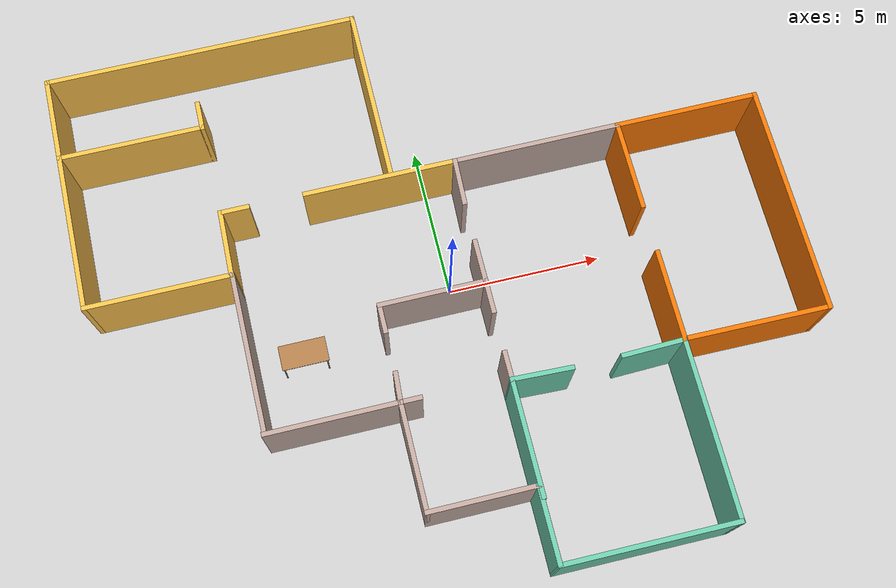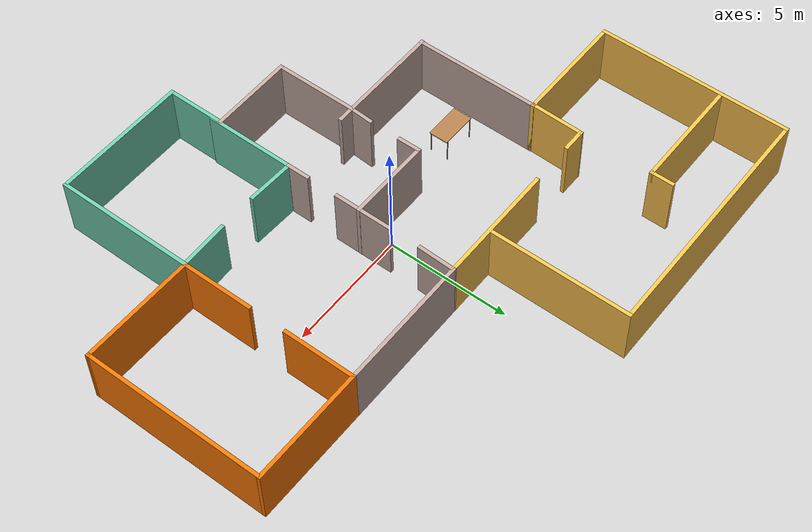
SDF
<sdf version="1.7">
 <world name="default">
  <model name="ground_plane">
   <static>1</static>
   <link name="link">
    <collision name="collision">
     <geometry><plane><normal>0 0 1</normal><size>100 100</size></plane></geometry>
     <surface>
      <contact><collide_bitmask>65535</collide_bitmask></contact>
      <friction><ode><mu>100</mu><mu2>50</mu2></ode></friction>
     </surface>
    </collision>
    <visual name="visual">
     <cast_shadows>0</cast_shadows>
     <geometry><plane><normal>0 0 1</normal><size>100 100</size></plane></geometry>
     <material>
      <script><uri>file://media/materials/scripts/gazebo.material</uri><name>Gazebo/Grey</name></script>
     </material>
    </visual>
   </link>
  </model>
  <model name="MyHome">
   <pose>-0.14512 -0.1471 0 0 -0 0</pose>
   <link name="Wall_0">
    <collision name="Wall_0_Collision">
     <geometry><box><size>5.5 0.15 2.5</size></box></geometry>
     <pose>0 0 1.25 0 -0 0</pose>
    </collision>
    <visual name="Wall_0_Visual">
     <pose>0 0 1.25 0 -0 0</pose>
     <geometry><box><size>5.5 0.15 2.5</size></box></geometry>
     <material>
      <script><uri>file://media/materials/scripts/gazebo.material</uri><name>Gazebo/Grey</name></script>
      <ambient>0.760784 0.662745 0.627451 1</ambient>
     </material>
     <meta><layer>0</layer></meta>
    </visual>
    <pose>3.78803 3.5852 0 0 -0 3.14159</pose>
   </link>
   <link name="Wall_1">
    <collision name="Wall_1_Collision">
     <geometry><box><size>5 0.15 2.5</size></box></geometry>
     <pose>0 0 1.25 0 -0 0</pose>
    </collision>
    <visual name="Wall_1_Visual">
     <pose>0 0 1.25 0 -0 0</pose>
     <geometry><box><size>5 0.15 2.5</size></box></geometry>
     <material>
      <script><uri>file://media/materials/scripts/gazebo.material</uri><name>Gazebo/Grey</name></script>
      <ambient>1 0.764706 0.305882 1</ambient>
     </material>
     <meta><layer>0</layer></meta>
    </visual>
    <pose>-1.31197 3.5852 0 0 -0 3.14159</pose>
   </link>
   <link name="Wall_10">
    <collision name="Wall_10_Collision">
     <geometry><box><size>3.5 0.15 2.5</size></box></geometry>
     <pose>0 0 1.25 0 -0 0</pose>
    </collision>
    <visual name="Wall_10_Visual">
     <pose>0 0 1.25 0 -0 0</pose>
     <geometry><box><size>3.5 0.15 2.5</size></box></geometry>
     <material>
      <script><uri>file://media/materials/scripts/gazebo.material</uri><name>Gazebo/Grey</name></script>
      <ambient>0.760784 0.662745 0.627451 1</ambient>
     </material>
     <meta><layer>0</layer></meta>
    </visual>
    <pose>-0.661974 -6.96481 0 0 -0 0</pose>
   </link>
   <link name="Wall_11">
    <collision name="Wall_11_Collision">
     <geometry><box><size>2.5 0.15 2.5</size></box></geometry>
     <pose>0 0 1.25 0 -0 0</pose>
    </collision>
    <visual name="Wall_11_Visual">
     <pose>0 0 1.25 0 -0 0</pose>
     <geometry><box><size>2.5 0.15 2.5</size></box></geometry>
     <material>
      <script><uri>file://media/materials/scripts/gazebo.material</uri><name>Gazebo/Grey</name></script>
      <ambient>0.435294 0.796078 0.67451 1</ambient>
     </material>
     <meta><layer>0</layer></meta>
    </visual>
    <pose>1.01303 -8.13981 0 0 -0 -1.5708</pose>
   </link>
   <link name="Wall_12">
    <collision name="Wall_12_Collision">
     <geometry><box><size>5.56902 0.15 2.5</size></box></geometry>
     <pose>0 0 1.25 0 -0 0</pose>
    </collision>
    <visual name="Wall_12_Visual">
     <pose>0 0 1.25 0 -0 0</pose>
     <geometry><box><size>5.56902 0.15 2.5</size></box></geometry>
     <material>
      <script><uri>file://media/materials/scripts/gazebo.material</uri><name>Gazebo/Grey</name></script>
      <ambient>0.435294 0.796078 0.67451 1</ambient>
     </material>
     <meta><layer>0</layer></meta>
    </visual>
    <pose>3.72251 -9.32486 0 0 -0 -0.003712</pose>
   </link>
   <link name="Wall_13">
    <collision name="Wall_13_Collision">
     <geometry><box><size>5.75 0.15 2.5</size></box></geometry>
     <pose>0 0 1.25 0 -0 0</pose>
    </collision>
    <visual name="Wall_13_Visual">
     <pose>0 0 1.25 0 -0 0</pose>
     <geometry><box><size>5.75 0.15 2.5</size></box></geometry>
     <material>
      <script><uri>file://media/materials/scripts/gazebo.material</uri><name>Gazebo/Grey</name></script>
      <ambient>0.435294 0.796078 0.67451 1</ambient>
     </material>
     <meta><layer>0</layer></meta>
    </visual>
    <pose>6.45212 -6.53492 0 0 -0 1.5708</pose>
   </link>
   <link name="Wall_14">
    <collision name="Wall_14_Collision">
     <geometry><box><size>2.06964 0.15 2.5</size></box></geometry>
     <pose>0 0 1.25 0 -0 0</pose>
    </collision>
    <visual name="Wall_14_Visual">
     <pose>0 0 1.25 0 -0 0</pose>
     <geometry><box><size>2.06964 0.15 2.5</size></box></geometry>
     <material>
      <script><uri>file://media/materials/scripts/gazebo.material</uri><name>Gazebo/Grey</name></script>
      <ambient>0.435294 0.796078 0.67451 1</ambient>
     </material>
     <meta><layer>0</layer></meta>
    </visual>
    <pose>5.47251 -3.76004 0 0 -0 -3.11542</pose>
   </link>
   <link name="Wall_16">
    <collision name="Wall_16_Collision">
     <geometry><box><size>2.00134 0.15 2.5</size></box></geometry>
     <pose>0 0 1.25 0 -0 0</pose>
    </collision>
    <visual name="Wall_16_Visual">
     <pose>0 0 1.25 0 -0 0</pose>
     <geometry><box><size>2.00134 0.15 2.5</size></box></geometry>
     <material>
      <script><uri>file://media/materials/scripts/gazebo.material</uri><name>Gazebo/Grey</name></script>
      <ambient>0.435294 0.796078 0.67451 1</ambient>
     </material>
     <meta><layer>0</layer></meta>
    </visual>
    <pose>1.98803 -3.74998 0 0 -0 3.10358</pose>
   </link>
   <link name="Wall_17">
    <collision name="Wall_17_Collision">
     <geometry><box><size>3.75 0.15 2.5</size></box></geometry>
     <pose>0 0 1.25 0 -0 0</pose>
    </collision>
    <visual name="Wall_17_Visual">
     <pose>0 0 1.25 0 -0 0</pose>
     <geometry><box><size>3.75 0.15 2.5</size></box></geometry>
     <material>
      <script><uri>file://media/materials/scripts/gazebo.material</uri><name>Gazebo/Grey</name></script>
      <ambient>0.435294 0.796078 0.67451 1</ambient>
     </material>
     <meta><layer>0</layer></meta>
    </visual>
    <pose>1.06303 -5.5148 0 0 -0 -1.5708</pose>
   </link>
   <link name="Wall_19">
    <collision name="Wall_19_Collision">
     <geometry><box><size>0.75 0.15 2.5</size></box></geometry>
     <pose>0 0 1.25 0 -0 0</pose>
    </collision>
    <visual name="Wall_19_Visual">
     <pose>0 0 1.25 0 -0 0</pose>
     <geometry><box><size>0.75 0.15 2.5</size></box></geometry>
     <material>
      <script><uri>file://media/materials/scripts/gazebo.material</uri><name>Gazebo/Grey</name></script>
      <ambient>0.760784 0.662745 0.627451 1</ambient>
     </material>
     <meta><layer>0</layer></meta>
    </visual>
    <pose>-2.03697 -3.61481 0 0 -0 0</pose>
   </link>
   <link name="Wall_23">
    <collision name="Wall_23_Collision">
     <geometry><box><size>1 0.15 2.5</size></box></geometry>
     <pose>0 0 1.25 0 -0 0</pose>
    </collision>
    <visual name="Wall_23_Visual">
     <pose>0 0 1.25 0 -0 0</pose>
     <geometry><box><size>1 0.15 2.5</size></box></geometry>
     <material>
      <script><uri>file://media/materials/scripts/gazebo.material</uri><name>Gazebo/Grey</name></script>
      <ambient>0.760784 0.662745 0.627451 1</ambient>
     </material>
     <meta><layer>0</layer></meta>
    </visual>
    <pose>1.06303 -3.2898 0 0 -0 1.5708</pose>
   </link>
   <link name="Wall_25">
    <collision name="Wall_25_Collision">
     <geometry><box><size>2.45977 0.15 2.5</size></box></geometry>
     <pose>0 0 1.25 0 -0 0</pose>
    </collision>
    <visual name="Wall_25_Visual">
     <pose>0 0 1.25 0 -0 0</pose>
     <geometry><box><size>2.45977 0.15 2.5</size></box></geometry>
     <material>
      <script><uri>file://media/materials/scripts/gazebo.material</uri><name>Gazebo/Grey</name></script>
      <ambient>0.760784 0.662745 0.627451 1</ambient>
     </material>
     <meta><layer>0</layer></meta>
    </visual>
    <pose>1.06303 -0.359918 0 0 -0 1.5708</pose>
   </link>
   <link name="Wall_27">
    <collision name="Wall_27_Collision">
     <geometry><box><size>1.59109 0.15 2.5</size></box></geometry>
     <pose>0 0 1.25 0 -0 0</pose>
    </collision>
    <visual name="Wall_27_Visual">
     <pose>0 0 1.25 0 -0 0</pose>
     <geometry><box><size>1.59109 0.15 2.5</size></box></geometry>
     <material>
      <script><uri>file://media/materials/scripts/gazebo.material</uri><name>Gazebo/Grey</name></script>
      <ambient>0.760784 0.662745 0.627451 1</ambient>
     </material>
     <meta><layer>0</layer></meta>
    </visual>
    <pose>1.08803 2.86508 0 0 -0 1.53609</pose>
   </link>
   <link name="Wall_29">
    <collision name="Wall_29_Collision">
     <geometry><box><size>3.5 0.15 2.5</size></box></geometry>
     <pose>0 0 1.25 0 -0 0</pose>
    </collision>
    <visual name="Wall_29_Visual">
     <pose>0 0 1.25 0 -0 0</pose>
     <geometry><box><size>3.5 0.15 2.5</size></box></geometry>
     <material>
      <script><uri>file://media/materials/scripts/gazebo.material</uri><name>Gazebo/Grey</name></script>
      <ambient>0.760784 0.662745 0.627451 1</ambient>
     </material>
     <meta><layer>0</layer></meta>
    </visual>
    <pose>-0.606876 -0.519992 0 0 -0 3.14159</pose>
   </link>
   <link name="Wall_30">
    <collision name="Wall_30_Collision">
     <geometry><box><size>1 0.15 2.5</size></box></geometry>
     <pose>0 0 1.25 0 -0 0</pose>
    </collision>
    <visual name="Wall_30_Visual">
     <pose>0 0 1.25 0 -0 0</pose>
     <geometry><box><size>1 0.15 2.5</size></box></geometry>
     <material>
      <script><uri>file://media/materials/scripts/gazebo.material</uri><name>Gazebo/Grey</name></script>
      <ambient>0.760784 0.662745 0.627451 1</ambient>
     </material>
     <meta><layer>0</layer></meta>
    </visual>
    <pose>-2.28188 -0.944992 0 0 -0 -1.5708</pose>
   </link>
   <link name="Wall_32">
    <collision name="Wall_32_Collision">
     <geometry><box><size>1.04651 0.15 2.5</size></box></geometry>
     <pose>0 0 1.25 0 -0 0</pose>
    </collision>
    <visual name="Wall_32_Visual">
     <pose>0 0 1.25 0 -0 0</pose>
     <geometry><box><size>1.04651 0.15 2.5</size></box></geometry>
     <material>
      <script><uri>file://media/materials/scripts/gazebo.material</uri><name>Gazebo/Grey</name></script>
      <ambient>0.760784 0.662745 0.627451 1</ambient>
     </material>
     <meta><layer>0</layer></meta>
    </visual>
    <pose>-2.30943 -3.1674 0 0 -0 -1.63229</pose>
   </link>
   <link name="Wall_34">
    <collision name="Wall_34_Collision">
     <geometry><box><size>3 0.15 2.5</size></box></geometry>
     <pose>0 0 1.25 0 -0 0</pose>
    </collision>
    <visual name="Wall_34_Visual">
     <pose>0 0 1.25 0 -0 0</pose>
     <geometry><box><size>3 0.15 2.5</size></box></geometry>
     <material>
      <script><uri>file://media/materials/scripts/gazebo.material</uri><name>Gazebo/Grey</name></script>
      <ambient>0.996078 0.47451 0.0196078 1</ambient>
     </material>
     <meta><layer>0</layer></meta>
    </visual>
    <pose>6.46303 2.16019 0 0 -0 -1.5708</pose>
   </link>
   <link name="Wall_36">
    <collision name="Wall_36_Collision">
     <geometry><box><size>3 0.15 2.5</size></box></geometry>
     <pose>0 0 1.25 0 -0 0</pose>
    </collision>
    <visual name="Wall_36_Visual">
     <pose>0 0 1.25 0 -0 0</pose>
     <geometry><box><size>3 0.15 2.5</size></box></geometry>
     <material>
      <script><uri>file://media/materials/scripts/gazebo.material</uri><name>Gazebo/Grey</name></script>
      <ambient>0.996078 0.47451 0.0196078 1</ambient>
     </material>
     <meta><layer>0</layer></meta>
    </visual>
    <pose>6.46303 -2.2898 0 0 -0 -1.5708</pose>
   </link>
   <link name="Wall_38">
    <collision name="Wall_38_Collision">
     <geometry><box><size>4.75 0.15 2.5</size></box></geometry>
     <pose>0 0 1.25 0 -0 0</pose>
    </collision>
    <visual name="Wall_38_Visual">
     <pose>0 0 1.25 0 -0 0</pose>
     <geometry><box><size>4.75 0.15 2.5</size></box></geometry>
     <material>
      <script><uri>file://media/materials/scripts/gazebo.material</uri><name>Gazebo/Grey</name></script>
      <ambient>0.996078 0.47451 0.0196078 1</ambient>
     </material>
     <meta><layer>0</layer></meta>
    </visual>
    <pose>8.76303 3.5852 0 0 -0 0</pose>
   </link>
   <link name="Wall_39">
    <collision name="Wall_39_Collision">
     <geometry><box><size>7.5 0.15 2.5</size></box></geometry>
     <pose>0 0 1.25 0 -0 0</pose>
    </collision>
    <visual name="Wall_39_Visual">
     <pose>0 0 1.25 0 -0 0</pose>
     <geometry><box><size>7.5 0.15 2.5</size></box></geometry>
     <material>
      <script><uri>file://media/materials/scripts/gazebo.material</uri><name>Gazebo/Grey</name></script>
      <ambient>0.996078 0.47451 0.0196078 1</ambient>
     </material>
     <meta><layer>0</layer></meta>
    </visual>
    <pose>11.063 -0.089805 0 0 -0 -1.5708</pose>
   </link>
   <link name="Wall_4">
    <collision name="Wall_4_Collision">
     <geometry><box><size>2.25 0.15 2.5</size></box></geometry>
     <pose>0 0 1.25 0 -0 0</pose>
    </collision>
    <visual name="Wall_4_Visual">
     <pose>0 0 1.25 0 -0 0</pose>
     <geometry><box><size>2.25 0.15 2.5</size></box></geometry>
     <material>
      <script><uri>file://media/materials/scripts/gazebo.material</uri><name>Gazebo/Grey</name></script>
      <ambient>1 0.764706 0.305882 1</ambient>
     </material>
     <meta><layer>0</layer></meta>
    </visual>
    <pose>-6.46011 2.53519 0 0 -0 -1.59282</pose>
   </link>
   <link name="Wall_40">
    <collision name="Wall_40_Collision">
     <geometry><box><size>4.75027 0.15 2.5</size></box></geometry>
     <pose>0 0 1.25 0 -0 0</pose>
    </collision>
    <visual name="Wall_40_Visual">
     <pose>0 0 1.25 0 -0 0</pose>
     <geometry><box><size>4.75027 0.15 2.5</size></box></geometry>
     <material>
      <script><uri>file://media/materials/scripts/gazebo.material</uri><name>Gazebo/Grey</name></script>
      <ambient>0.996078 0.47451 0.0196078 1</ambient>
     </material>
     <meta><layer>0</layer></meta>
    </visual>
    <pose>8.76303 -3.73981 0 0 -0 3.13072</pose>
   </link>
   <link name="Wall_42">
    <collision name="Wall_42_Collision">
     <geometry><box><size>1 0.15 2.5</size></box></geometry>
     <pose>0 0 1.25 0 -0 0</pose>
    </collision>
    <visual name="Wall_42_Visual">
     <pose>0 0 1.25 0 -0 0</pose>
     <geometry><box><size>1 0.15 2.5</size></box></geometry>
     <material>
      <script><uri>file://media/materials/scripts/gazebo.material</uri><name>Gazebo/Grey</name></script>
      <ambient>1 0.764706 0.305882 1</ambient>
     </material>
     <meta><layer>0</layer></meta>
    </visual>
    <pose>-6.01197 3.5852 0 0 -0 0</pose>
   </link>
   <link name="Wall_44">
    <collision name="Wall_44_Collision">
     <geometry><box><size>4.75 0.15 2.5</size></box></geometry>
     <pose>0 0 1.25 0 -0 0</pose>
    </collision>
    <visual name="Wall_44_Visual">
     <pose>0 0 1.25 0 -0 0</pose>
     <geometry><box><size>4.75 0.15 2.5</size></box></geometry>
     <material>
      <script><uri>file://media/materials/scripts/gazebo.material</uri><name>Gazebo/Grey</name></script>
      <ambient>1 0.764706 0.305882 1</ambient>
     </material>
     <meta><layer>0</layer></meta>
    </visual>
    <pose>-8.7601 1.4852 0 0 -0 3.14159</pose>
   </link>
   <link name="Wall_45">
    <collision name="Wall_45_Collision">
     <geometry><box><size>8 0.15 2.5</size></box></geometry>
     <pose>0 0 1.25 0 -0 0</pose>
    </collision>
    <visual name="Wall_45_Visual">
     <pose>0 0 1.25 0 -0 0</pose>
     <geometry><box><size>8 0.15 2.5</size></box></geometry>
     <material>
      <script><uri>file://media/materials/scripts/gazebo.material</uri><name>Gazebo/Grey</name></script>
      <ambient>1 0.764706 0.305882 1</ambient>
     </material>
     <meta><layer>0</layer></meta>
    </visual>
    <pose>-11.0601 5.41019 0 0 -0 1.5708</pose>
   </link>
   <link name="Wall_46">
    <collision name="Wall_46_Collision">
     <geometry><box><size>10.25 0.15 2.5</size></box></geometry>
     <pose>0 0 1.25 0 -0 0</pose>
    </collision>
    <visual name="Wall_46_Visual">
     <pose>0 0 1.25 0 -0 0</pose>
     <geometry><box><size>10.25 0.15 2.5</size></box></geometry>
     <material>
      <script><uri>file://media/materials/scripts/gazebo.material</uri><name>Gazebo/Grey</name></script>
      <ambient>1 0.764706 0.305882 1</ambient>
     </material>
     <meta><layer>0</layer></meta>
    </visual>
    <pose>-6.01011 9.3352 0 0 -0 0</pose>
   </link>
   <link name="Wall_47">
    <collision name="Wall_47_Collision">
     <geometry><box><size>5.75 0.15 2.5</size></box></geometry>
     <pose>0 0 1.25 0 -0 0</pose>
    </collision>
    <visual name="Wall_47_Visual">
     <pose>0 0 1.25 0 -0 0</pose>
     <geometry><box><size>5.75 0.15 2.5</size></box></geometry>
     <material>
      <script><uri>file://media/materials/scripts/gazebo.material</uri><name>Gazebo/Grey</name></script>
      <ambient>1 0.764706 0.305882 1</ambient>
     </material>
     <meta><layer>0</layer></meta>
    </visual>
    <pose>-0.960105 6.53519 0 0 -0 -1.5708</pose>
   </link>
   <link name="Wall_5">
    <collision name="Wall_5_Collision">
     <geometry><box><size>5.25 0.15 2.5</size></box></geometry>
     <pose>0 0 1.25 0 -0 0</pose>
    </collision>
    <visual name="Wall_5_Visual">
     <pose>0 0 1.25 0 -0 0</pose>
     <geometry><box><size>5.25 0.15 2.5</size></box></geometry>
     <material>
      <script><uri>file://media/materials/scripts/gazebo.material</uri><name>Gazebo/Grey</name></script>
      <ambient>0.760784 0.662745 0.627451 1</ambient>
     </material>
     <meta><layer>0</layer></meta>
    </visual>
    <pose>-6.46011 -1.06481 0 0 -0 -1.5708</pose>
   </link>
   <link name="Wall_50">
    <collision name="Wall_50_Collision">
     <geometry><box><size>4.75 0.15 2.5</size></box></geometry>
     <pose>0 0 1.25 0 -0 0</pose>
    </collision>
    <visual name="Wall_50_Visual">
     <pose>0 0 1.25 0 -0 0</pose>
     <geometry><box><size>4.75 0.15 2.5</size></box></geometry>
     <material>
      <script><uri>file://media/materials/scripts/gazebo.material</uri><name>Gazebo/Grey</name></script>
      <ambient>1 0.764706 0.305882 1</ambient>
     </material>
     <meta><layer>0</layer></meta>
    </visual>
    <pose>-8.76384 6.60144 0 0 -0 0</pose>
   </link>
   <link name="Wall_51">
    <collision name="Wall_51_Collision">
     <geometry><box><size>1 0.15 2.5</size></box></geometry>
     <pose>0 0 1.25 0 -0 0</pose>
    </collision>
    <visual name="Wall_51_Visual">
     <pose>0 0 1.25 0 -0 0</pose>
     <geometry><box><size>1 0.15 2.5</size></box></geometry>
     <material>
      <script><uri>file://media/materials/scripts/gazebo.material</uri><name>Gazebo/Grey</name></script>
      <ambient>1 0.764706 0.305882 1</ambient>
     </material>
     <meta><layer>0</layer></meta>
    </visual>
    <pose>-6.46384 7.02644 0 0 -0 1.5708</pose>
   </link>
   <link name="Wall_8">
    <collision name="Wall_8_Collision">
     <geometry><box><size>4.29626 0.15 2.5</size></box></geometry>
     <pose>0 0 1.25 0 -0 0</pose>
    </collision>
    <visual name="Wall_8_Visual">
     <pose>0 0 1.25 0 -0 0</pose>
     <geometry><box><size>4.29626 0.15 2.5</size></box></geometry>
     <material>
      <script><uri>file://media/materials/scripts/gazebo.material</uri><name>Gazebo/Grey</name></script>
      <ambient>0.760784 0.662745 0.627451 1</ambient>
     </material>
     <meta><layer>0</layer></meta>
    </visual>
    <pose>-4.4101 -3.61481 0 0 -0 0</pose>
   </link>
   <link name="Wall_9">
    <collision name="Wall_9_Collision">
     <geometry><box><size>3.5 0.15 2.5</size></box></geometry>
     <pose>0 0 1.25 0 -0 0</pose>
    </collision>
    <visual name="Wall_9_Visual">
     <pose>0 0 1.25 0 -0 0</pose>
     <geometry><box><size>3.5 0.15 2.5</size></box></geometry>
     <material>
      <script><uri>file://media/materials/scripts/gazebo.material</uri><name>Gazebo/Grey</name></script>
      <ambient>0.760784 0.662745 0.627451 1</ambient>
     </material>
     <meta><layer>0</layer></meta>
    </visual>
    <pose>-2.33697 -5.28981 0 0 -0 -1.5708</pose>
   </link>
   <static>1</static>
  </model>
  <model name="table">
   <static>1</static>
   <link name="link">
    <collision name="surface">
     <pose>0 0 1 0 -0 0</pose>
     <geometry><box><size>1.5 0.8 0.03</size></box></geometry>
     <surface><friction><ode><mu>0.6</mu><mu2>0.6</mu2></ode></friction></surface>
    </collision>
    <visual name="visual1">
     <pose>0 0 1 0 -0 0</pose>
     <geometry><box><size>1.5 0.8 0.03</size></box></geometry>
     <material>
      <script><uri>file://media/materials/scripts/gazebo.material</uri><name>Gazebo/Wood</name></script>
     </material>
    </visual>
    <collision name="front_left_leg">
     <pose>0.68 0.38 0.5 0 -0 0</pose>
     <geometry><cylinder><radius>0.02</radius><length>1</length></cylinder></geometry>
    </collision>
    <visual name="front_left_leg">
     <pose>0.68 0.38 0.5 0 -0 0</pose>
     <geometry><cylinder><radius>0.02</radius><length>1</length></cylinder></geometry>
     <material>
      <script><uri>file://media/materials/scripts/gazebo.material</uri><name>Gazebo/Grey</name></script>
     </material>
    </visual>
    <collision name="front_right_leg">
     <pose>0.68 -0.38 0.5 0 -0 0</pose>
     <geometry><cylinder><radius>0.02</radius><length>1</length></cylinder></geometry>
    </collision>
    <visual name="front_right_leg">
     <pose>0.68 -0.38 0.5 0 -0 0</pose>
     <geometry><cylinder><radius>0.02</radius><length>1</length></cylinder></geometry>
     <material>
      <script><uri>file://media/materials/scripts/gazebo.material</uri><name>Gazebo/Grey</name></script>
     </material>
    </visual>
    <collision name="back_right_leg">
     <pose>-0.68 -0.38 0.5 0 -0 0</pose>
     <geometry><cylinder><radius>0.02</radius><length>1</length></cylinder></geometry>
    </collision>
    <visual name="back_right_leg">
     <pose>-0.68 -0.38 0.5 0 -0 0</pose>
     <geometry><cylinder><radius>0.02</radius><length>1</length></cylinder></geometry>
     <material>
      <script><uri>file://media/materials/scripts/gazebo.material</uri><name>Gazebo/Grey</name></script>
     </material>
    </visual>
    <collision name="back_left_leg">
     <pose>-0.68 0.38 0.5 0 -0 0</pose>
     <geometry><cylinder><radius>0.02</radius><length>1</length></cylinder></geometry>
    </collision>
    <visual name="back_left_leg">
     <pose>-0.68 0.38 0.5 0 -0 0</pose>
     <geometry><cylinder><radius>0.02</radius><length>1</length></cylinder></geometry>
     <material>
      <script><uri>file://media/materials/scripts/gazebo.material</uri><name>Gazebo/Grey</name></script>
     </material>
    </visual>
   </link>
   <pose>-5.03003 -1.20007 0 0 -0 0</pose>
  </model>
 </world>
</sdf>
